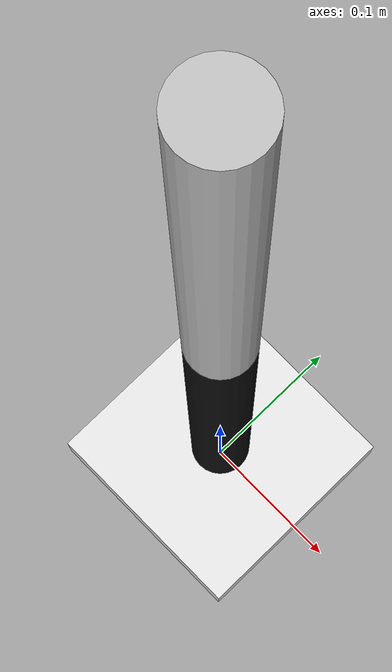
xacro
<?xml version="1.0"?>

<robot xmlns:xacro="http://www.ros.org/wiki/xacro" name="manipulator">

    <!-- Include Common Properties -->
    <xacro:include filename="common_properties.xacro" />

    <!-- Include Gazebo Parameters -->
    <xacro:include filename="$(find robot_description)/urdf/robot_gazebo.xacro" />

    <!-- Include Ros2 Control Parameters -->
    <xacro:include filename="$(find robot_description)/urdf/robot_ros2_control.xacro" />

    <!-- Useful XACRO Variables (Properties) -->
    <xacro:property name="effort" value="30.0" />
    <xacro:property name="velocity" value="10.0" />

    <!-- Dimensions -->
    <xacro:property name="arm_base_length" value="0.15" />
    <xacro:property name="arm_base_height" value="0.03" />
    <xacro:property name="arm_radius" value="0.02" />
    <xacro:property name="arm_length" value="0.3" />

    <!-- Links -->
    <link name="world" />

    <link name="base_link">
        <visual>
            <geometry>
                <box size="${arm_base_length} ${arm_base_length} ${arm_base_height}" />
            </geometry>
            <origin xyz="0 0 ${arm_base_height / 2.0}" rpy="0 0 0" />
            <material name="white" />
        </visual>
        <collision>
            <geometry>
                <box size="${arm_base_length} ${arm_base_length} ${arm_base_height}" />
            </geometry>
            <origin xyz="0 0 ${arm_base_height / 2.0}" rpy="0 0 0" />
        </collision>
        <xacro:box_inertia m="1" l="${arm_base_length}" w="${arm_base_length}" h="${arm_base_height}"
                           xyz="0 0 ${arm_base_height / 2.0}" rpy="0 0 0" />
    </link>

    <xacro:macro name="arm_link" params="prefix color">
        <link name="${prefix}_link">
            <visual>
                <geometry>
                    <cylinder radius="${arm_radius}" length="${arm_length}" />
                </geometry>
                <origin xyz="0 0 ${arm_length / 2.0}" rpy="0 0 0" />
                <material name="${color}" />
            </visual>
            <collision>
                <geometry>
                    <cylinder radius="${arm_radius}" length="${arm_length}" />
                </geometry>
                <origin xyz="0 0 ${arm_length / 2.0}" rpy="0 0 0" />
            </collision>
            <xacro:cylinder_inertia m="0.3" r="${arm_radius}" h="${arm_length}"
                                    xyz="0 0 ${arm_length / 2.0}" rpy="0 0 0" />
        </link>
    </xacro:macro>

    <xacro:arm_link prefix="forearm" color="black" />
    <xacro:arm_link prefix="hand" color="silver" />

    <!-- Joints -->
    <joint name="virtual_joint" type="fixed">
        <parent link="world" />
        <child link="base_link" />
        <origin xyz="0 0 0" rpy="0 0 0" />
    </joint>

    <joint name="joint1" type="revolute">
        <parent link="base_link" />
        <child link="forearm_link" />
        <origin xyz="0 0 ${arm_base_height}" rpy="0 0 0" />
        <axis xyz="0 0 1" />
        <limit lower="-${PI}" upper="${PI}" effort="${effort}" velocity="${velocity}" />
    </joint>

    <joint name="joint2" type="revolute">
        <parent link="forearm_link" />
        <child link="hand_link" />
        <origin xyz="0 0 ${arm_length}" rpy="0 0 0" />
        <axis xyz="0 1 0" />
        <limit lower="-${PI / 2.0}" upper="${PI / 2.0}" effort="${effort}" velocity="${velocity}" />
    </joint>

</robot>

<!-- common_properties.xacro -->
<robot xmlns:xacro="http://www.ros.org/wiki/xacro">

    <!-- Common Constants -->
    <xacro:property name="PI" value="3.141592653589793" />

    <!-- Common Colors -->

    <material name="black">
        <color rgba="0.05 0.05 0.05 1" />
    </material>

    <material name="white">
        <color rgba="0.9 0.9 0.9 1" />
    </material>

    <material name="silver">
        <color rgba="0.75 0.75 0.75 1" />
    </material>

    <material name="red">
        <color rgba="0.5 0 0 1" />
    </material>

    <material name="green">
        <color rgba="0 0.5 0 1" />
    </material>

    <material name="blue">
        <color rgba="0 0 0.5 1" />
    </material>

    <material name="grey">
        <color rgba="0.5 0.5 0.5 1" />
    </material>

    <material name="orange">
        <color rgba="1 0.65 0 1" />
    </material>

    <material name="yellow">
        <color rgba="1 1 0 1" />
    </material>

    <!-- Common Momentun of Inertia -->

    <xacro:macro name="box_inertia" params="m l w h xyz rpy">
        <inertial>
            <origin xyz="${xyz}" rpy="${rpy}" />
            <mass value="${m}" />
            <inertia ixx="${(m/12) * (h*h + l*l)}" ixy="0"                        ixz="0"
                                                   iyy="${(m/12) * (w*w + l*l)}"  iyz="0"
                                                                                  izz="${(m/12) * (w*w + h*h)}" />
        </inertial>
    </xacro:macro>

    <xacro:macro name="cylinder_inertia" params="m r h xyz rpy">
        <inertial>
            <origin xyz="${xyz}" rpy="${rpy}" />
            <mass value="${m}" />
            <inertia ixx="${(1/12) * m * (3*r*r + h*h)}"  ixy="0"                              ixz="0"
                                                          iyy="${(1/12) * m * (3*r*r + h*h)}"  iyz="0"
                                                                                               izz="${(1/2) * m * (r*r)}" />
        </inertial>
    </xacro:macro>

    <xacro:macro name="sphere_inertia" params="m r xyz rpy">
        <inertial>
            <origin xyz="${xyz}" rpy="${rpy}" />
            <mass value="${m}" />
            <inertia ixx="${(2/5) * m * (r*r)}"  ixy="0"                     ixz="0"
                                                 iyy="${(2/5) * m * (r*r)}"  iyz="0"
                                                                             izz="${(2/5) * m * (r*r)}" />
        </inertial>
    </xacro:macro>

</robot>
